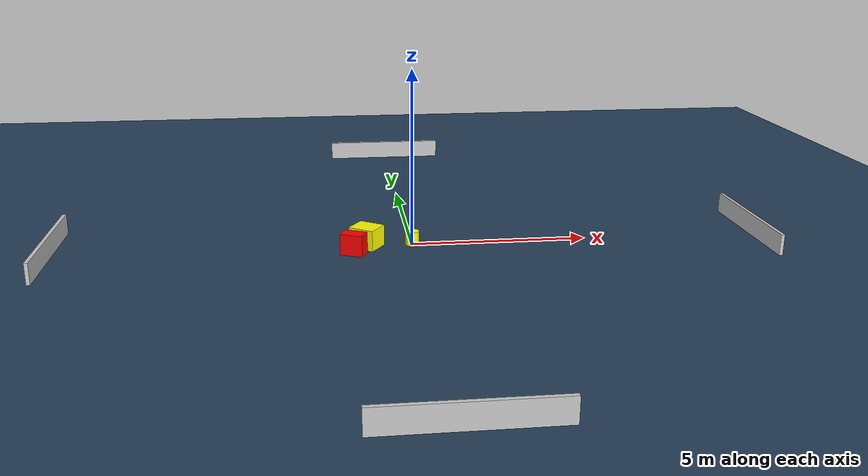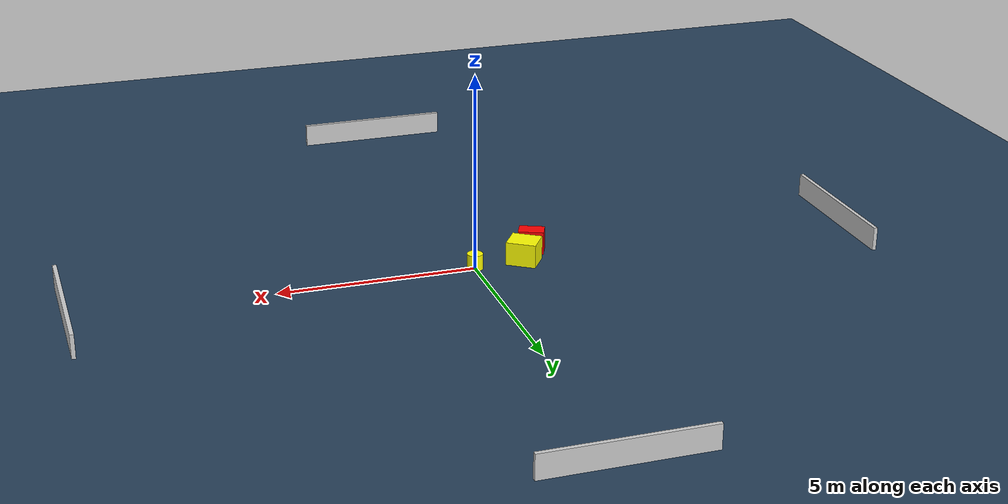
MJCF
<?xml version="1.0" ?>
<mujoco model="generated_environment">
  <option timestep="0.01" integrator="RK4" cone="elliptic"/>
  <default>
    <geom density="1"/>
  </default>
  <asset>
    <texture builtin="gradient" height="3072" name="skybox" rgb1="0.3 0.5 0.7" rgb2="0 0 0" type="skybox" width="512"/>
    <texture builtin="checker" height="300" name="groundplane" rgb1="0.2 0.3 0.4" rgb2="0.1 0.2 0.3" type="2d" width="300"/>
    <material name="groundplane" reflectance="0.2" texrepeat="5 5" texture="groundplane"/>
  </asset>
  <worldbody>
    <light dir="0 0 -1" directional="true" pos="0 0 1.5"/>
    <geom condim="3" friction="0.5 0.005 0.001" material="groundplane" name="floor" pos="0 0 0" size="0 0 0.05" type="plane"/>
    <body name="walls">
      <geom name="wall_1" condim="4" pos="-10.0 0.0 0.3" rgba="0.800000011920929 0.800000011920929 0.800000011920929 1.0" size="0.05 2.0 0.3" type="box"/>
      <geom name="wall_2" condim="4" pos="10.0 0.0 0.3" rgba="0.800000011920929 0.800000011920929 0.800000011920929 1.0" size="0.05 2.0 0.3" type="box"/>
      <geom name="wall_3" condim="4" pos="0.0 -10.0 0.3" rgba="0.800000011920929 0.800000011920929 0.800000011920929 1.0" size="2.0 0.05 0.3" type="box"/>
      <geom name="wall_4" condim="4" pos="0.0 10.0 0.3" rgba="0.800000011920929 0.800000011920929 0.800000011920929 1.0" size="2.0 0.05 0.3" type="box"/>
    </body>
    <body name="robot">
      <joint name="joint_x" type="slide" pos="0 0 0" axis="1 0 0"/>
      <joint name="joint_y" type="slide" pos="0 0 0" axis="0 1 0"/>
      <geom name="robot" type="cylinder" pos="0.0 0.0 0.2" size="0.2 0.2 0.0" mass="5.0" friction="1.0 0.005 0.0001" condim="4" rgba="1.0 1.0 0.0 1.0"/>
    </body>
    <body name="obstacle_1_movable">
      <geom name="obstacle_1_movable" condim="4" pos="-1.2946016759556875 -0.026994619011514055 0.3" euler="0 0 325.86155068001153" friction="0.0 0.005 0.001" rgba="1.0 1.0 0.0 1.0" size="0.38037193686713155 0.33330109607266123 0.3" type="box" mass="0.1"/>
      <joint type="free"/>
    </body>
    <body name="obstacle_2_static">
      <geom name="obstacle_2_static" condim="4" pos="-1.686493635119142 -0.5934415938228589 0.3" euler="0 0 246.05263800635356" friction="0.0 0.005 0.001" rgba="1.0 0.0 0.0 1.0" size="0.21133305497819604 0.32480875107902557 0.3" type="box"/>
    </body>
  </worldbody>
  <actuator>
    <motor name="actuator_x" joint="joint_x" gear="1" ctrlrange="-1 1"/>
    <motor name="actuator_y" joint="joint_y" gear="1" ctrlrange="-1 1"/>
  </actuator>
</mujoco>
